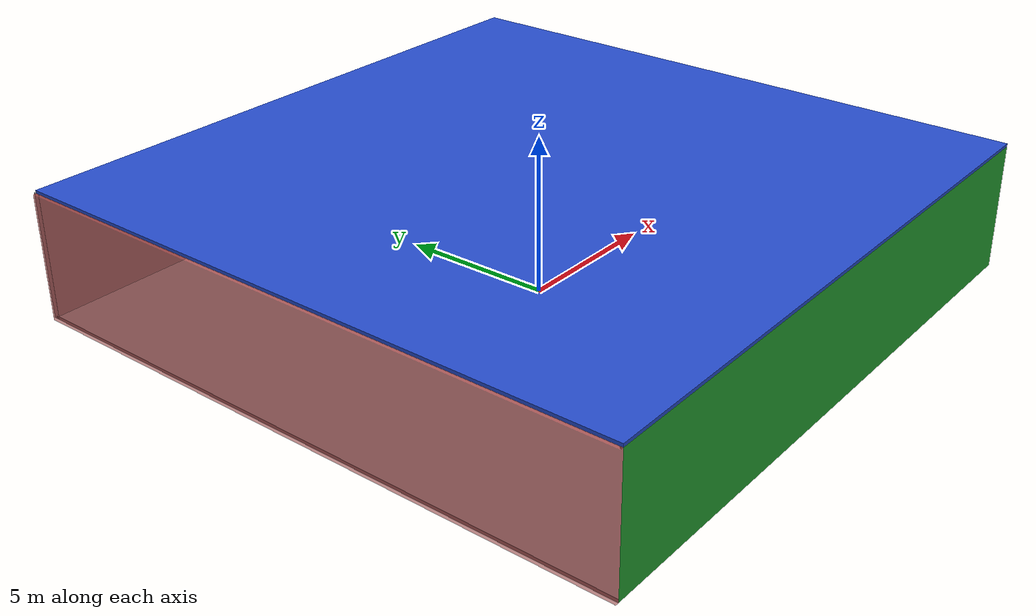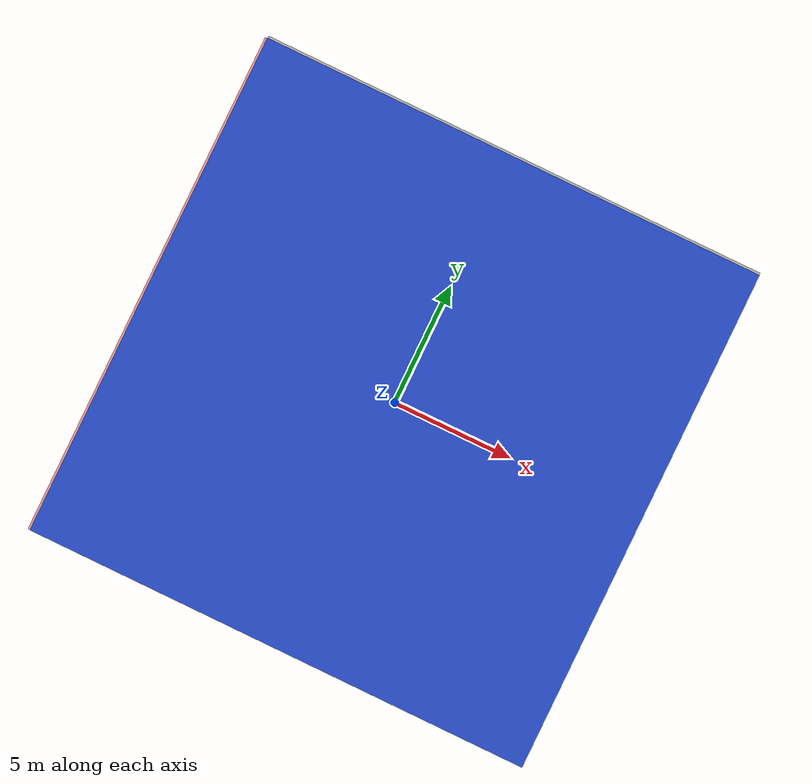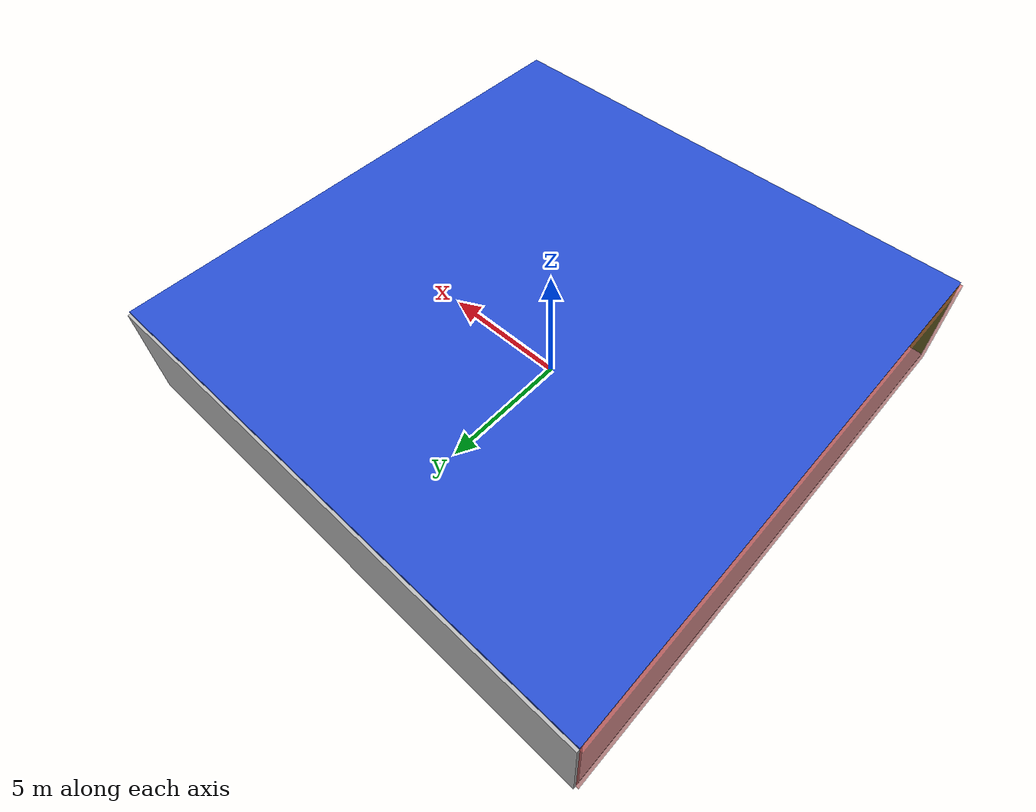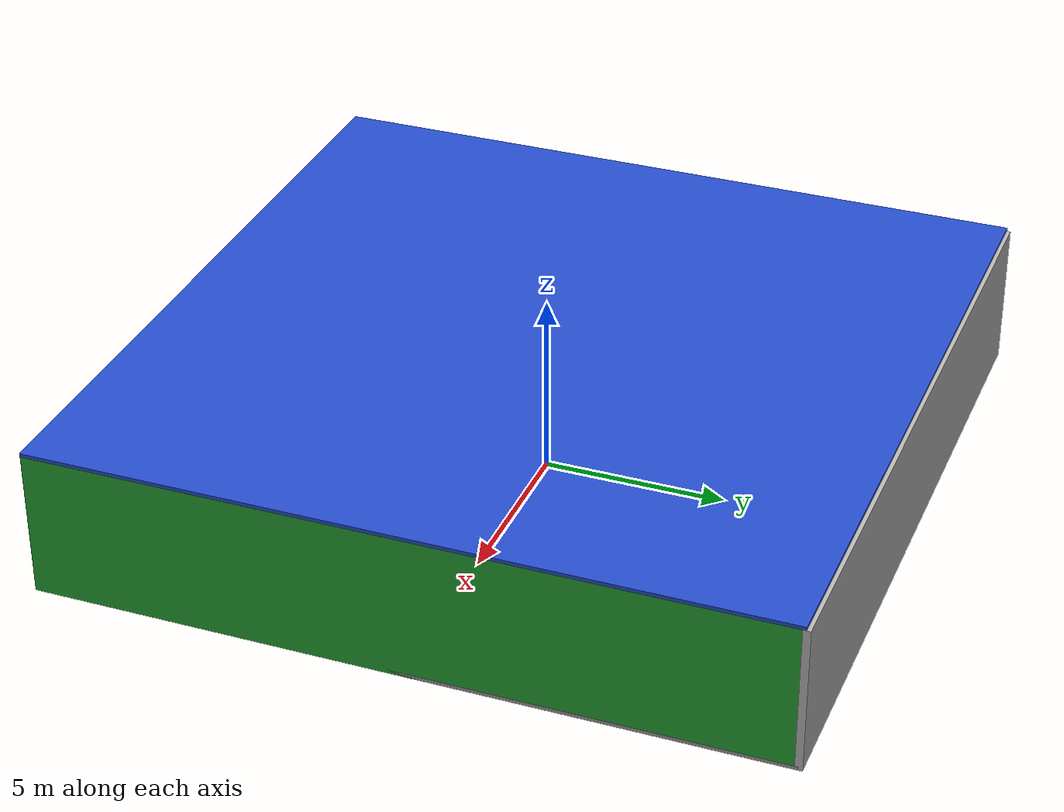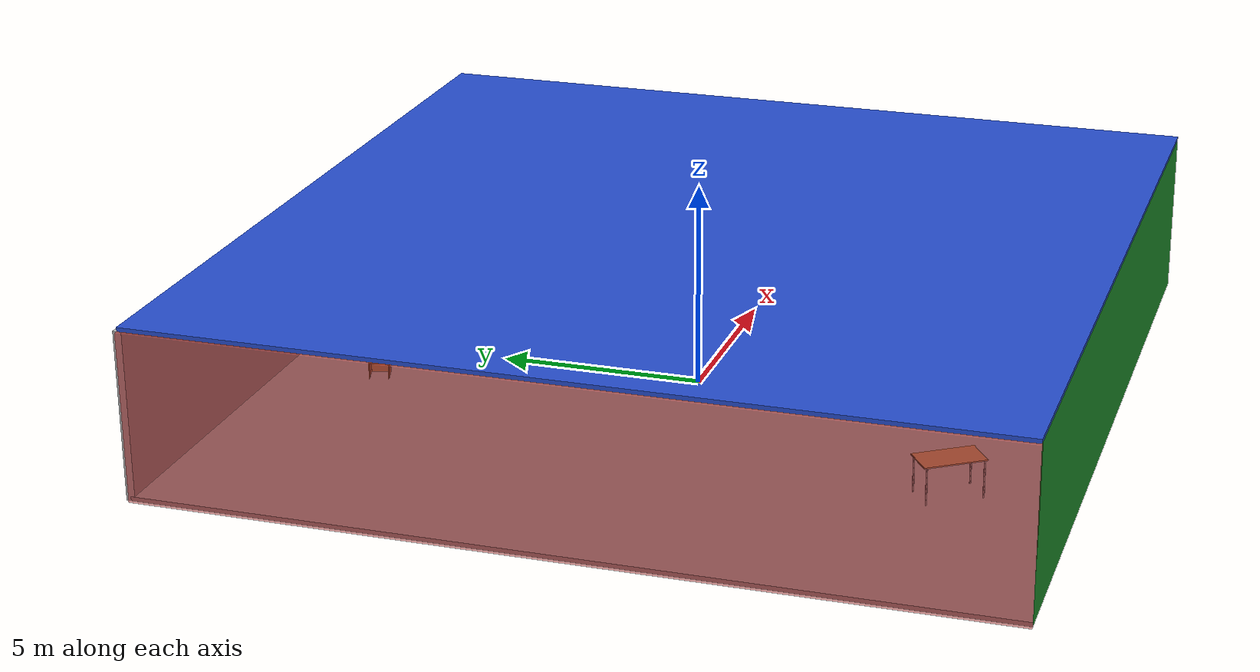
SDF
<sdf version="1.4">
 <world name="default">
  <physics type="ode">
   <max_step_size>0.001</max_step_size>
   <real_time_factor>1</real_time_factor>
   <real_time_update_rate>1000</real_time_update_rate>
   <gravity>0 0 -9.8</gravity>
  </physics>
  <scene><ambient>0.4 0.4 0.4 1</ambient><background>0.7 0.7 0.7 1</background><shadows>1</shadows></scene>
  <model name="Surrounding">
   <static>1</static>
   <link name="Ceiling">
    <collision name="Ceiling_Collision"><geometry><box><size>20 20 0.1</size></box></geometry></collision>
    <visual name="Ceiling_Visual">
     <geometry><box><size>20 20 0.1</size></box></geometry>
     <material>
      <script><uri>file://media/materials/scripts/gazebo.material</uri><name>Gazebo/BlueGlow</name></script>
     </material>
    </visual>
    <pose>0 0 4.05 0 0 0</pose>
   </link>
   <link name="Wall_South">
    <collision name="Wall_South_Collision">
     <geometry><box><size>20 0 4</size></box></geometry>
     <pose>0 0 2 0 -0 0</pose>
    </collision>
    <visual name="Wall_South_Visual">
     <pose>0 0 2 0 -0 0</pose>
     <geometry><box><size>20 0 4</size></box></geometry>
     <material>
      <script><uri>file://media/materials/scripts/gazebo.material</uri><name>Gazebo/GreenGlow</name></script>
     </material>
    </visual>
    <velocity_decay><linear>0</linear><angular>0</angular></velocity_decay>
    <pose>0 -10 0 0 -0 0</pose>
   </link>
   <link name="Wall_East">
    <collision name="Wall_21_Collision">
     <geometry><box><size>20 0 4</size></box></geometry>
     <pose>0 0 2 0 -0 0</pose>
    </collision>
    <visual name="Wall_21_Visual">
     <pose>0 0 2 0 -0 0</pose>
     <geometry><box><size>20 0 4</size></box></geometry>
     <material>
      <script><uri>file://media/materials/scripts/gazebo.material</uri><name>Gazebo/Green</name></script>
     </material>
    </visual>
    <velocity_decay><linear>0</linear><angular>0</angular></velocity_decay>
    <pose>10 0 0 0 -0 1.5708</pose>
   </link>
   <link name="Wall_North">
    <collision name="Wall_22_Collision">
     <geometry><box><size>20 0.2 4</size></box></geometry>
     <pose>0 0 2 0 -0 0</pose>
    </collision>
    <visual name="Wall_22_Visual">
     <pose>0 0 2 0 -0 0</pose>
     <geometry><box><size>20 0.2 4</size></box></geometry>
     <material>
      <script><uri>file://media/materials/scripts/gazebo.material</uri><name>Gazebo/LightOff</name></script>
     </material>
    </visual>
    <velocity_decay><linear>0</linear><angular>0</angular></velocity_decay>
    <pose>0 10 0 0 -0 0</pose>
   </link>
   <link name="Wall_West">
    <collision name="Wall_23_Collision">
     <geometry><box><size>20 0.2 4</size></box></geometry>
     <pose>0 0 2 0 -0 0</pose>
    </collision>
    <visual name="Wall_23_Visual">
     <pose>0 0 2 0 -0 0</pose>
     <geometry><box><size>20 0.2 4</size></box></geometry>
     <material>
      <script><uri>file://media/materials/scripts/gazebo.material</uri><name>Gazebo/RedTransparent</name></script>
     </material>
    </visual>
    <velocity_decay><linear>0</linear><angular>0</angular></velocity_decay>
    <pose>-10 0 0 0 0 -1.5708</pose>
   </link>
   <link name="Ground_link">
    <collision name="collision">
     <pose>0 0 .05 0 -0 0</pose>
     <geometry><box><size>20 20 0.1</size></box></geometry>
    </collision>
    <visual name="visual">
     <pose>0 0 .05 0 -0 0</pose>
     <geometry><box><size>20 20 0.1</size></box></geometry>
     <material>
      <script><uri>file://media/materials/scripts/gazebo.material</uri><name>Gazebo/GreyGradientSky</name></script>
     </material>
    </visual>
   </link>
   <static>1</static>
  </model>
  <spherical_coordinates>
   <surface_model>EARTH_WGS84</surface_model>
   <latitude_deg>0</latitude_deg>
   <longitude_deg>0</longitude_deg>
   <elevation>0</elevation>
   <heading_deg>0</heading_deg>
  </spherical_coordinates>
  <light name="lightball_0" type="diffuse">
   <diffuse>0.8 0.8 0.8 1</diffuse>
   <specular>0.2 0.2 0.2 1</specular>
   <attenuation>
    <range>100</range>
    <constant>0.7</constant>
    <linear>0.01</linear>
    <quadratic>0.001</quadratic>
   </attenuation>
   <direction>-0.5 0.1 -0.9</direction>
   <pose>-0.554102962868 3.40287022307 0.630173034392 0 0 0</pose>
  </light>
  <light name="lightball_1" type="diffuse">
   <diffuse>0.8 0.8 0.8 1</diffuse>
   <specular>0.2 0.2 0.2 1</specular>
   <attenuation>
    <range>100</range>
    <constant>0.7</constant>
    <linear>0.01</linear>
    <quadratic>0.001</quadratic>
   </attenuation>
   <direction>-0.5 0.1 -0.9</direction>
   <pose>3.81210792976 8.84784096257 2.85570545817 0 0 0</pose>
  </light>
  <light name="lightball_2" type="diffuse">
   <diffuse>0.8 0.8 0.8 1</diffuse>
   <specular>0.2 0.2 0.2 1</specular>
   <attenuation>
    <range>100</range>
    <constant>0.7</constant>
    <linear>0.01</linear>
    <quadratic>0.001</quadratic>
   </attenuation>
   <direction>-0.5 0.1 -0.9</direction>
   <pose>-9.9325659014 -3.79236559597 2.85504856673 0 0 0</pose>
  </light>
  <light name="lightball_3" type="diffuse">
   <diffuse>0.8 0.8 0.8 1</diffuse>
   <specular>0.2 0.2 0.2 1</specular>
   <attenuation>
    <range>100</range>
    <constant>0.7</constant>
    <linear>0.01</linear>
    <quadratic>0.001</quadratic>
   </attenuation>
   <direction>-0.5 0.1 -0.9</direction>
   <pose>-4.68487513336 -2.80497570033 2.95872303791 0 0 0</pose>
  </light>
  <light name="lightball_4" type="diffuse">
   <diffuse>0.8 0.8 0.8 1</diffuse>
   <specular>0.2 0.2 0.2 1</specular>
   <attenuation>
    <range>100</range>
    <constant>0.7</constant>
    <linear>0.01</linear>
    <quadratic>0.001</quadratic>
   </attenuation>
   <direction>-0.5 0.1 -0.9</direction>
   <pose>4.61963207384 -2.23872231511 1.52412300046 0 0 0</pose>
  </light>
  <light name="lightball_5" type="diffuse">
   <diffuse>0.8 0.8 0.8 1</diffuse>
   <specular>0.2 0.2 0.2 1</specular>
   <attenuation>
    <range>100</range>
    <constant>0.7</constant>
    <linear>0.01</linear>
    <quadratic>0.001</quadratic>
   </attenuation>
   <direction>-0.5 0.1 -0.9</direction>
   <pose>7.80737993914 -0.052068444638 2.51119260208 0 0 0</pose>
  </light>
  <light name="lightball_6" type="diffuse">
   <diffuse>0.8 0.8 0.8 1</diffuse>
   <specular>0.2 0.2 0.2 1</specular>
   <attenuation>
    <range>100</range>
    <constant>0.7</constant>
    <linear>0.01</linear>
    <quadratic>0.001</quadratic>
   </attenuation>
   <direction>-0.5 0.1 -0.9</direction>
   <pose>5.40834516192 -1.60284891322 3.46774970922 0 0 0</pose>
  </light>
  <light name="lightball_7" type="diffuse">
   <diffuse>0.8 0.8 0.8 1</diffuse>
   <specular>0.2 0.2 0.2 1</specular>
   <attenuation>
    <range>100</range>
    <constant>0.7</constant>
    <linear>0.01</linear>
    <quadratic>0.001</quadratic>
   </attenuation>
   <direction>-0.5 0.1 -0.9</direction>
   <pose>1.55140497403 -2.1595510711 2.93105953283 0 0 0</pose>
  </light>
  <light name="lightball_8" type="diffuse">
   <diffuse>0.8 0.8 0.8 1</diffuse>
   <specular>0.2 0.2 0.2 1</specular>
   <attenuation>
    <range>100</range>
    <constant>0.7</constant>
    <linear>0.01</linear>
    <quadratic>0.001</quadratic>
   </attenuation>
   <direction>-0.5 0.1 -0.9</direction>
   <pose>-0.208087995714 5.19061826791 2.98221794429 0 0 0</pose>
  </light>
  <include><uri>model://table</uri><pose>-4.67120114085 -7.14578152949 0 0 0 2.16712828461</pose></include>
  <include><uri>model://cabinet</uri><pose>-2.08520585328 7.46924272072 0 0 0 0.302367198169</pose></include>
  <include>
   <uri>model://construction_cone</uri>
   <pose>2.04699773027 -7.3305979007 0 0 0 2.57705949412</pose>
  </include>
  <include><uri>model://table</uri><pose>3.83637377003 -4.37702645378 0 0 0 2.31618432866</pose></include>
  <include><uri>model://cabinet</uri><pose>7.2875831798 4.41036386684 0 0 0 0.94238352645</pose></include>
 </world>
</sdf>

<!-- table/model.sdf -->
<sdf version="1.5">
  <model name="table">
    <static>true</static>
    <link name="link">
      <collision name="surface">
        <pose>0 0 1.0 0 0 0</pose>
        <geometry>
          <box>
            <size>1.5 0.8 0.03</size>
          </box>
        </geometry>
        <surface>
          <friction>
            <ode>
              <mu>0.6</mu>
              <mu2>0.6</mu2>
            </ode>
          </friction>
        </surface>
      </collision>
      <visual name="visual1">
        <pose>0 0 1.0 0 0 0</pose>
        <geometry>
          <box>
            <size>1.5 0.8 0.03</size>
          </box>
        </geometry>
        <material>
          <script>
            <uri>model://media/materials/scripts/gazebo.material</uri>
            <name>Gazebo/Wood</name>
          </script>
        </material>
      </visual>
      <collision name="front_left_leg">
        <pose>0.68 0.38 0.5 0 0 0</pose>
        <geometry>
          <cylinder>
            <radius>0.02</radius>
            <length>1.0</length>
          </cylinder>
        </geometry>
      </collision>
      <visual name="front_left_leg">
        <pose>0.68 0.38 0.5 0 0 0</pose>
        <geometry>
          <cylinder>
            <radius>0.02</radius>
            <length>1.0</length>
          </cylinder>
        </geometry>
        <material>
          <script>
            <uri>model://media/materials/scripts/gazebo.material</uri>
            <name>Gazebo/Grey</name>
          </script>
        </material>
      </visual>
      <collision name="front_right_leg">
        <pose>0.68 -0.38 0.5 0 0 0</pose>
        <geometry>
          <cylinder>
            <radius>0.02</radius>
            <length>1.0</length>
          </cylinder>
        </geometry>
      </collision>
      <visual name="front_right_leg">
        <pose>0.68 -0.38 0.5 0 0 0</pose>
        <geometry>
          <cylinder>
            <radius>0.02</radius>
            <length>1.0</length>
          </cylinder>
        </geometry>
        <material>
          <script>
            <uri>model://media/materials/scripts/gazebo.material</uri>
            <name>Gazebo/Grey</name>
          </script>
        </material>
      </visual>
      <collision name="back_right_leg">
        <pose>-0.68 -0.38 0.5 0 0 0</pose>
        <geometry>
          <cylinder>
            <radius>0.02</radius>
            <length>1.0</length>
          </cylinder>
        </geometry>
      </collision>
      <visual name="back_right_leg">
        <pose>-0.68 -0.38 0.5 0 0 0</pose>
        <geometry>
          <cylinder>
            <radius>0.02</radius>
            <length>1.0</length>
          </cylinder>
        </geometry>
        <material>
          <script>
            <uri>model://media/materials/scripts/gazebo.material</uri>
            <name>Gazebo/Grey</name>
          </script>
        </material>
      </visual>
      <collision name="back_left_leg">
        <pose>-0.68 0.38 0.5 0 0 0</pose>
        <geometry>
          <cylinder>
            <radius>0.02</radius>
            <length>1.0</length>
          </cylinder>
        </geometry>
      </collision>
      <visual name="back_left_leg">
        <pose>-0.68 0.38 0.5 0 0 0</pose>
        <geometry>
          <cylinder>
            <radius>0.02</radius>
            <length>1.0</length>
          </cylinder>
        </geometry>
        <material>
          <script>
            <uri>model://media/materials/scripts/gazebo.material</uri>
            <name>Gazebo/Grey</name>
          </script>
        </material>
      </visual>
    </link>
  </model>
</sdf>

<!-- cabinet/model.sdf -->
<sdf version="1.5">
  <model name="cabinet">
    <static>true</static>
    <link name="cabinet_bottom_plate">
      <inertial>
        <pose>0 0 -1 0 0 0</pose>
        <inertia>
          <ixx>2.050000</ixx>
          <ixy>0</ixy>
          <ixz>0</ixz>
          <iyy>2.050000</iyy>
          <iyz>0</iyz>
          <izz>2.050000</izz>
        </inertia>
        <mass>25.000000</mass>
      </inertial>
      <collision name="cabinet_bottom_plate_geom">
        <pose>0 0 0.010000 0 0 0</pose>
        <geometry>
          <box>
            <size>0.450000 0.450000 0.020000</size>
          </box>
        </geometry>
      </collision>
      <visual name="cabinet_bottom_plate_geom_visual">
        <pose>0 0 0.010000 0 0 0</pose>
        <geometry>
          <box>
            <size>0.450000 0.450000 0.020000</size>
          </box>
        </geometry>
        <material>
          <script>
            <uri>model://media/materials/scripts/gazebo.material</uri>
            <name>Gazebo/Wood</name>
          </script>
        </material>
      </visual>
      <collision name="cabinet_bottom_plate_geom_cabinet_back_plate">
        <pose>0.235000 0 0.510000 0 0 0</pose>
        <geometry>
          <box>
            <size>0.020000 0.450000 1.020000</size>
          </box>
        </geometry>
      </collision>
      <visual name="cabinet_bottom_plate_geom_cabinet_back_plate_visual">
        <pose>0.235000 0 0.510000 0 0 0</pose>
        <geometry>
          <box>
            <size>0.020000 0.450000 1.020000</size>
          </box>
        </geometry>
        <material>
          <script>
            <uri>model://media/materials/scripts/gazebo.material</uri>
            <name>Gazebo/Wood</name>
          </script>
        </material>
      </visual>
      <collision name="cabinet_bottom_plate_geom_cabinet_left_plate">
        <pose>0 0.235000 0.510000 0 0 0</pose>
        <geometry>
          <box>
            <size>0.450000 0.020000 1.020000</size>
          </box>
        </geometry>
      </collision>
      <visual name="cabinet_bottom_plate_geom_cabinet_left_plate_visual">
        <pose>0 0.235000 0.510000 0 0 0</pose>
        <geometry>
          <box>
            <size>0.450000 0.020000 1.020000</size>
          </box>
        </geometry>
        <material>
          <script>
            <uri>model://media/materials/scripts/gazebo.material</uri>
            <name>Gazebo/Wood</name>
          </script>
        </material>
      </visual>
      <collision name="cabinet_bottom_plate_geom_cabinet_middle_plate">
        <pose>0 0 0.510000 0 0 0</pose>
        <geometry>
          <box>
            <size>0.450000 0.450000 0.020000</size>
          </box>
        </geometry>
      </collision>
      <visual name="cabinet_bottom_plate_geom_cabinet_middle_plate_visual">
        <pose>0 0 0.510000 0 0 0</pose>
        <geometry>
          <box>
            <size>0.450000 0.450000 0.020000</size>
          </box>
        </geometry>
        <material>
          <script>
            <uri>model://media/materials/scripts/gazebo.material</uri>
            <name>Gazebo/Wood</name>
          </script>
        </material>
      </visual>
      <collision name="cabinet_bottom_plate_geom_cabinet_right_plate">
        <pose>0 -0.235000 0.510000 0 0 0</pose>
        <geometry>
          <box>
            <size>0.450000 0.020000 1.020000</size>
          </box>
        </geometry>
      </collision>
      <visual name="cabinet_bottom_plate_geom_cabinet_right_plate_visual">
        <pose>0 -0.235000 0.510000 0 0 0</pose>
        <geometry>
          <box>
            <size>0.450000 0.020000 1.020000</size>
          </box>
        </geometry>
        <material>
          <script>
            <uri>model://media/materials/scripts/gazebo.material</uri>
            <name>Gazebo/Wood</name>
          </script>
        </material>
      </visual>
      <collision name="cabinet_bottom_plate_geom_cabinet_top_plate">
        <pose>0 0 1.010000 0 0 0</pose>
        <geometry>
          <box>
            <size>0.450000 0.450000 0.020000</size>
          </box>
        </geometry>
      </collision>
      <visual name="cabinet_bottom_plate_geom_cabinet_top_plate_visual">
        <pose>0 0 1.010000 0 0 0</pose>
        <geometry>
          <box>
            <size>0.450000 0.450000 0.020000</size>
          </box>
        </geometry>
        <material>
          <script>
            <uri>model://media/materials/scripts/gazebo.material</uri>
            <name>Gazebo/Wood</name>
          </script>
        </material>
      </visual>
    </link>
  </model>
</sdf>

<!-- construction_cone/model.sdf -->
<sdf version="1.5">
  <model name="Construction Cone">
    <link name="link">
      <collision name="collision">
        <geometry>
          <mesh>
            <scale>10 10 10</scale>
            <uri>file://isr-testbed/construction_cone/meshes/construction_cone.dae</uri>
          </mesh>
        </geometry>
      </collision>
      <visual name="visual">
        <geometry>
          <mesh>
            <scale>10 10 10</scale>
            <uri>file://isr-testbed/construction_cone/meshes/construction_cone.dae</uri>
          </mesh>
        </geometry>
      </visual>
    </link>
  </model>
</sdf>
